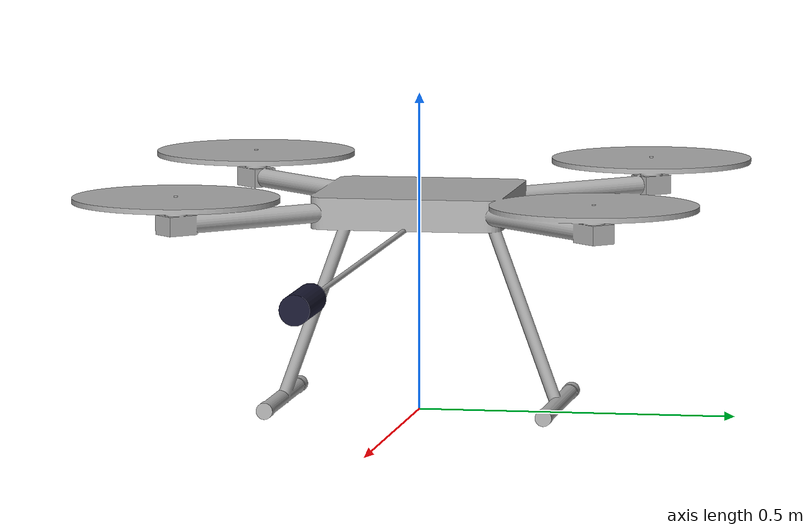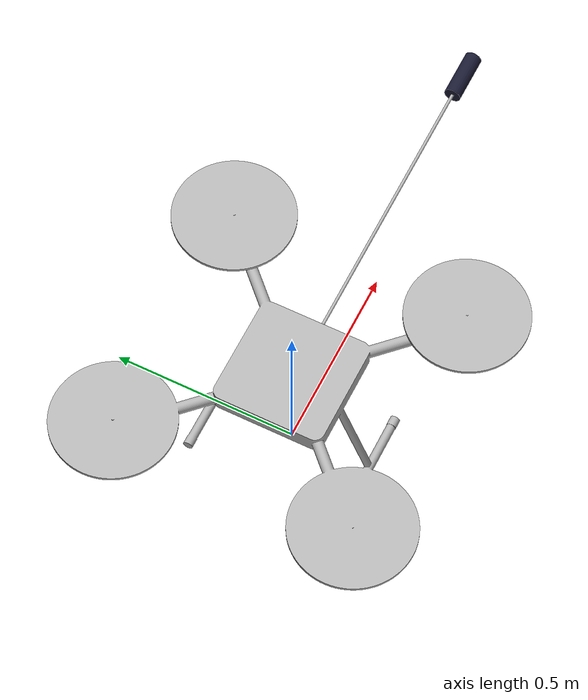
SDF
<sdf version='1.6'>
  <model name='griffin_payload'>

    <static>false</static>

    <link name='base_link'>
      <pose frame=''>0 0 0 0 0 1.570796</pose>
      <inertial>
        <pose frame=''>0 0 0.3 0 0 0</pose>
        <mass>4.5</mass>
        <inertia>
          <ixx>0.23</ixx>
          <ixy>0</ixy>
          <ixz>0</ixz>
          <iyy>0.235</iyy>
          <iyz>0</iyz>
          <izz>0.328</izz>
        </inertia>
      </inertial>

      <collision name='base_link_inertia_collision'>
        <pose frame=''>0 0 0 0 0 0</pose>
        <geometry>
          <mesh>
            <scale>0.001 0.001 0.001</scale>
            <uri>model://griffin_payload/meshes/griffin_2.dae</uri>
          </mesh>
        </geometry>
      </collision>

      <visual name='base_link_inertia_visual'>
        <pose frame=''>0 0 0 0 0 0</pose>
        <geometry>
          <mesh>
            <scale>0.001 0.001 0.001</scale>
            <uri>model://griffin_payload/meshes/griffin_2.dae</uri>
          </mesh>
        </geometry>
      </visual>

         <sensor type="camera" name="camera1">
          <always_on>1</always_on>
          <update_rate>15</update_rate>
          <visualize>1</visualize>
          <pose> 0 -0.1 0.3 0 1.570796 0 </pose>

          <plugin name="camera_controller" filename="libgazebo_ros_camera.so">
           <alwaysOn>true</alwaysOn>
           <updateRate>0</updateRate>
           <cameraName>single_pendulum/camera1</cameraName>
           <imageTopicName>image_raw</imageTopicName>
           <cameraInfoTopicName>camera_info</cameraInfoTopicName>
           <frameName>camera_link</frameName>
           <CxPrime>320</CxPrime>
           <Cx>320</Cx>
           <Cy>240</Cy>
           <!-- image_width / (2*tan(hfov_radian /2)) --><!-- 320 for wide and 772.55 for narrow stereo camera -->
           <focalLength>530.472938</focalLength>
           <hackBaseline>0.07</hackBaseline>
           <distortionK1>0</distortionK1>
           <distortionK2>0</distortionK2>
           <distortionK3>0</distortionK3>
           <distortionT1>0</distortionT1>
           <distortionT2>0</distortionT2>
          </plugin>

          <camera>
           <pose> 0 0 0 0 0 0 </pose>
           <horizontal_fov>1.085594795</horizontal_fov>
           <image>
            <width>640</width>
            <height>480</height>
           </image>
           <clip>
            <near>0.01</near>
            <far>25</far>
           </clip>

           <save enabled="true">
            <path>/home/francois/Documents/gazebo_photos</path>
           </save>

           <noise>
            <type>
             gaussian
            </type>
            <mean>0</mean>
            <stddev>0.03</stddev>
           </noise>
          </camera>
         </sensor>
    </link>

<!-- my payload -->
<link name= 'payload'>
  <pose> 1 0 0.3 0 -1.570796327 0</pose>
  <inertial>
   <mass>2</mass>
   <pose>0 0 0 0 0 0</pose>
   <inertia>
    <ixx>0.001</ixx>
    <iyy>0.001</iyy>
    <izz>0.001</izz>
    <ixy>0</ixy>
    <ixz>0</ixz>
    <iyz>0</iyz>
   </inertia>
  </inertial>

  <collision name='mass_collision'>
    <pose> 0 0 0 0 0 0 </pose>
   <geometry>
      <cylinder>
          <radius>0.0225</radius>
          <length>0.13</length>
         </cylinder>
   </geometry>
  </collision>

  <visual name='rod_visual'>
    <pose> 0 0 0.5 0 0 0 </pose>
   <geometry>
    <cylinder>
     <radius>0.004</radius>
     <length>1.0</length>
    </cylinder>
   </geometry>
</visual>

<visual name='mass_visual'>
    <pose> 0 0 0 0 0 0 </pose>
    <material>
      <ambient>0.1 0.1 0.1 1</ambient>
      <diffuse>0.1 0.1 0.2 1</diffuse>
      <specular>0 0 0 0</specular>
      <emissive>0 0 0 1</emissive>
    </material>

       <geometry>
        <cylinder>
         <radius>0.0225</radius>
         <length>0.13</length>
        </cylinder>
       </geometry>
    </visual>

</link>

<joint name="pendulum_arm_to_griffin" type="ball">
<parent>base_link</parent>
<child>payload</child>
<pose> 0 0 1 0 0 0 </pose>
</joint>

  <!-- hier is al die plugins-->

    <plugin name='mavlink_interface' filename='libgazebo_mavlink_interface.so'>
      <robotNamespace/>
      <imuSubTopic>/imu</imuSubTopic>
      <gpsSubTopic>/gps</gpsSubTopic>
      <magSubTopic>/mag</magSubTopic>
      <baroSubTopic>/baro</baroSubTopic>
      <motorCommandPubTopic>/command/motor</motorCommandPubTopic>

      <noise>true</noise>

      <mavlink_addr>INADDR_ANY</mavlink_addr>
      <mavlink_tcp_port>4560</mavlink_tcp_port>
      <enable_lockstep>true</enable_lockstep>
      <use_tcp>true</use_tcp>

      <hil_mode>false</hil_mode>
      <serialEnabled>false</serialEnabled>
      <hil_state_level>false</hil_state_level>
      <qgc_addr>INADDR_ANY</qgc_addr>
      <qgc_udp_port>14550</qgc_udp_port>
      <mavlink_udp_port>14560</mavlink_udp_port>
      <serialDevice>/dev/ttyACM0</serialDevice>
      <baudRate>921600</baudRate>

      <vehicle_is_tailsitter>false</vehicle_is_tailsitter>
      <send_vision_estimation>false</send_vision_estimation>
      <send_odometry>false</send_odometry>
    </plugin>

    <plugin name='actuators' filename='libgazebo_forces_moments_actuators_plugin.so'>
      <robotNamespace/>
      <linkName>base_link</linkName>
      <copterConfig>4x</copterConfig>
      <motorTimeConstant>0.07</motorTimeConstant>
      <armLength>0.49</armLength>
      <virtualYawMomentArm>0.0237</virtualYawMomentArm>

      <!-- Use maxMotorThrust for a linear motor model or motor_models for a complete 3rd order motor model -->

      <motor_models>
        <motor name='motor1'>
          <motor_index>0</motor_index>
          <coeffs>-0.0000000397959403 0.0001996456801152 -0.2773896905520106 118.7667175238575652</coeffs>
        </motor>
        <motor name='motor2'>
          <motor_index>1</motor_index>
          <coeffs>-0.0000000413595098 0.0002069219596305 -0.2858221900173662 121.2675504198610383</coeffs>
        </motor>
        <motor name='motor3'>
          <motor_index>2</motor_index>
          <coeffs>-0.0000000406769540 0.0002028435504012 -0.2787807080476987 117.7570545685150876</coeffs>
        </motor>
        <motor name='motor4'>
          <motor_index>3</motor_index>
          <coeffs>-0.0000000386173758 0.0001927613593388 -0.2630242287303664 109.8400430499503813</coeffs>
        </motor>
      </motor_models>
    </plugin>

    <plugin name="gps_plugin" filename="libgazebo_gps_plugin.so">
        <robotNamespace></robotNamespace>
        <gpsNoise>true</gpsNoise>
    </plugin>

    <plugin name='magnetometer_plugin' filename='libgazebo_magnetometer_plugin.so'>
      <robotNamespace/>
      <pubRate>20</pubRate>
      <noiseDensity>0.0004</noiseDensity>
      <randomWalk>6.4e-06</randomWalk>
      <biasCorrelationTime>600</biasCorrelationTime>
      <magTopic>/mag</magTopic>
      <magNoise>true</magNoise>
    </plugin>

    <plugin name='barometer_plugin' filename='libgazebo_barometer_plugin.so'>
      <robotNamespace/>
      <pubRate>10</pubRate>
      <baroTopic>/baro</baroTopic>
      <baroNoise>true</baroNoise>
    </plugin>

    <plugin name='gazebo_imu_plugin' filename='libgazebo_imu_plugin.so'>
      <robotNamespace/>
      <linkName>base_link</linkName>
      <imuTopic>/imu</imuTopic>
      <gyroscopeNoiseDensity>0.0003394</gyroscopeNoiseDensity>
      <gyroscopeRandomWalk>3.8785e-05</gyroscopeRandomWalk>
      <gyroscopeBiasCorrelationTime>1000.0</gyroscopeBiasCorrelationTime>
      <gyroscopeTurnOnBiasSigma>0.0087</gyroscopeTurnOnBiasSigma>
      <accelerometerNoiseDensity>0.004</accelerometerNoiseDensity>
      <accelerometerRandomWalk>0.006</accelerometerRandomWalk>
      <accelerometerBiasCorrelationTime>300.0</accelerometerBiasCorrelationTime>
      <accelerometerTurnOnBiasSigma>0.196</accelerometerTurnOnBiasSigma>
      <imuNoise>true</imuNoise>
    </plugin>
  </model>
</sdf>
